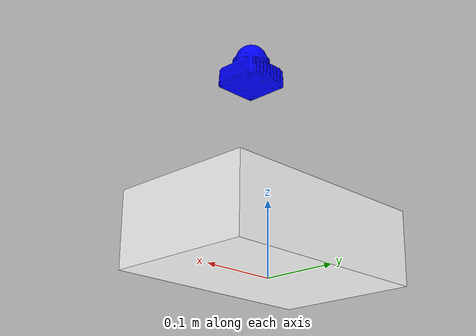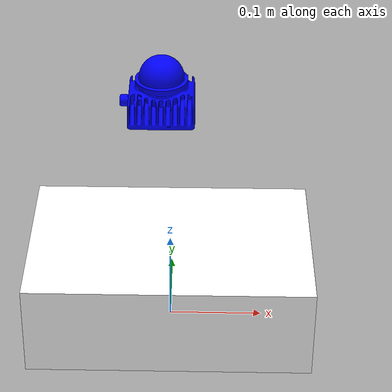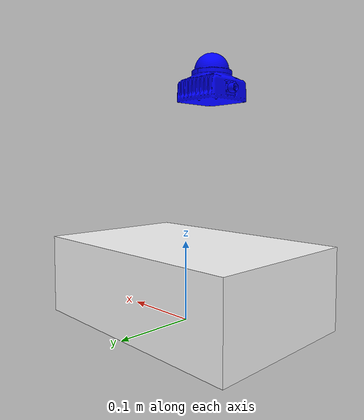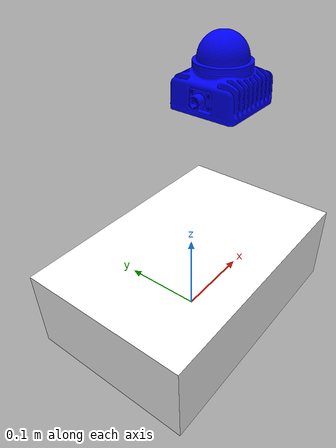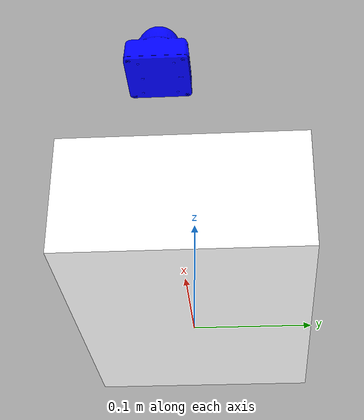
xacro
<?xml version="1.0"?>

<robot name="robot" xmlns:xacro="http://www.ros.org/wiki/xacro">

  <xacro:property name="length_wheel" value="0.05" />
  <xacro:property name="radius_wheel" value="0.06" />
  <xacro:property name="PI" value="3.1415926"/>
  <xacro:macro name="default_inertial" params="mass">
    <inertial>
      <mass value="${mass}" />
      <inertia ixx="0.01" ixy="0.0" ixz="0.0"
               iyy="0.01" iyz="0.0" izz="0.01" />
    </inertial>
  </xacro:macro>

  <!-- chassis to livox_frame -->
  <xacro:arg name="xyz" default="0.0 -0.045 0.3" />
  <xacro:arg name="rpy" default="0 0 0" />

  <link name="base_link">
    <visual>
      <geometry>
        <box size="0.2 .3 .1"/>
      </geometry>
      <origin rpy="0 0 ${PI/2}" xyz="0 0 0.05"/>
      <material name="white">
        <color rgba="1 1 1 1"/>
      </material>
    </visual>
    <collision>
      <geometry>
        <box size="0.2 .3 0.1"/>
      </geometry>
      <origin rpy="0 0 ${PI/2}" xyz="0 0 0.05"/>
    </collision>
    <xacro:default_inertial mass="8.2"/>
  </link>
  <!-- Livox-Mid360  -->
  <link name="livox_frame">
    <visual>
      <origin xyz="0.025 -0.0265 -0.025" rpy="${pi/2} 0 ${pi}"/>
      <geometry>
        <mesh filename="package://pb_rm_simulation/meshes/mid360.stl" scale="0.001 0.001 0.001"/>
      </geometry>
      <material name="blue">
        <color rgba="0 0 1.0 1" />
      </material>
    </visual>
  </link>

  <joint name="livox_joint" type="fixed">
    <origin xyz="$(arg xyz)" rpy="$(arg rpy)" />
    <parent link="base_link"/>
    <child link="livox_frame"/>
  </joint>

</robot>
